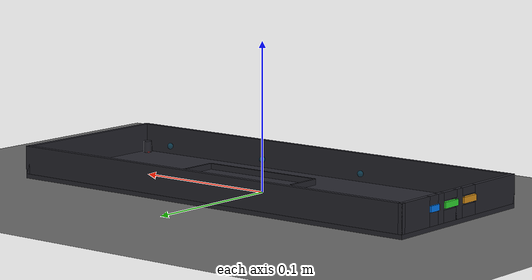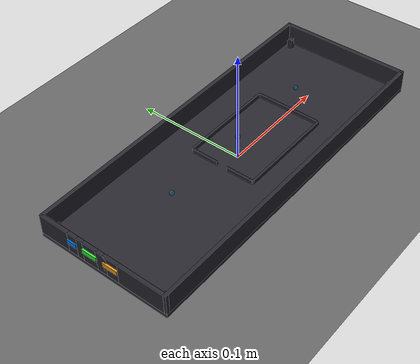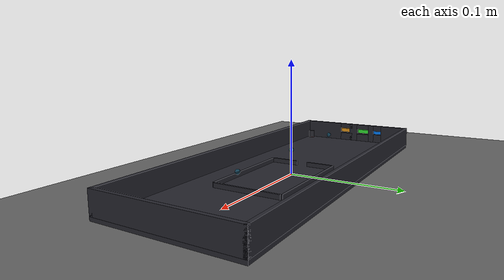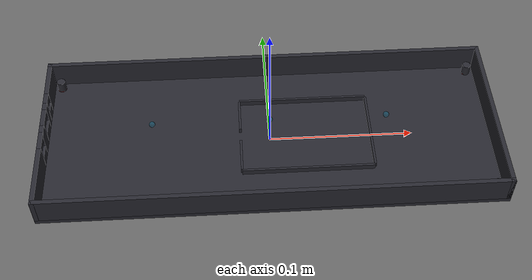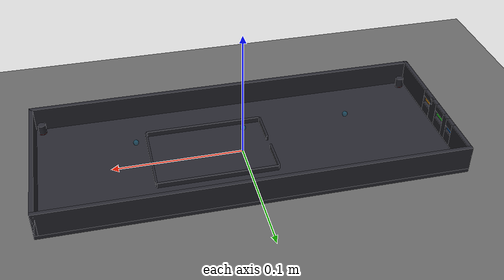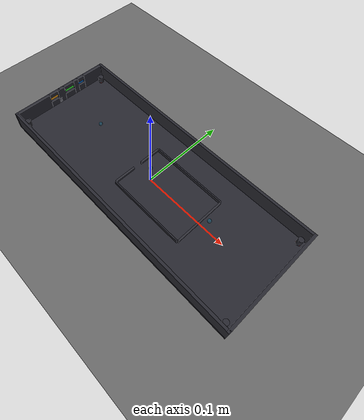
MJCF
<mujoco model="keyboard_bottom_case">

  <compiler angle="radian" autolimits="true"/>

  <option gravity="0 0 -9.81" timestep="0.002"/>

  <default>
    <geom rgba="0.15 0.15 0.18 1"/>
  </default>

  <asset>
    <material name="abs_black"
              rgba="0.15 0.15 0.18 1"
              specular="0.3"
              shininess="0.4"
              reflectance="0.05"/>
  </asset>

  <worldbody>

    <geom name="ground" type="plane" size="1 1 0.1"
          pos="0 0 0" euler="0 0 0"
          friction="0.8 0.005 0.0001"
          rgba="0.4 0.4 0.4 1"/>

    <body name="bottom_case" pos="0 0 0.011">

      <inertial pos="0 0 0"
                mass="0.085"
                diaginertia="3.2e-5 2.4e-4 2.5e-4"/>

      <!-- freejoint: comment out to make case a static fixture anchor -->
      <freejoint name="bottom_case_free"/>

      <geom name="floor_slab"
            type="box"
            size="0.1564 0.06115 0.0015"
            pos="0 0 -0.0095"
            material="abs_black"
            density="1050"
            friction="1.0 0.005 0.0001"
            condim="4"
            priority="1"/>

      <!-- Segment A: rear section, before USB-C (+Y side) -->
      <!-- Y: +0.06115 down to USB-C rear edge +0.0325 → half=(0.06115-0.0325)/2=0.01433, center=0.06115-0.01433=0.04682 -->
      <geom name="wall_left_A"
            type="box"
            size="0.0015 0.01433 0.0095"
            pos="-0.1549 0.04682 0.0015"
            material="abs_black"
            density="1050"
            friction="1.0 0.005 0.0001"
            condim="4" priority="1"/>

      <!-- USB-C fill BELOW cutout -->
      <geom name="wall_left_usbc_below"
            type="box"
            size="0.0015 0.0045 0.0045"
            pos="-0.1549 0.028 -0.0035"
            material="abs_black"
            density="1050"
            friction="1.0 0.005 0.0001"
            condim="4" priority="1"/>

      <!-- USB-C fill ABOVE cutout -->
      <geom name="wall_left_usbc_above"
            type="box"
            size="0.0015 0.0045 0.003"
            pos="-0.1549 0.028 0.008"
            material="abs_black"
            density="1050"
            friction="1.0 0.005 0.0001"
            condim="4" priority="1"/>

      <!-- Segment B: between USB-C and power switch -->
      <!-- Y: USB-C front edge 0.0235 to power rear edge 0.0175 → half=0.003, center=0.020 -->
      <geom name="wall_left_B"
            type="box"
            size="0.0015 0.003 0.0095"
            pos="-0.1549 0.0205 0.0015"
            material="abs_black"
            density="1050"
            friction="1.0 0.005 0.0001"
            condim="4" priority="1"/>

      <!-- Power switch fill BELOW -->
      <geom name="wall_left_pwr_below"
            type="box"
            size="0.0015 0.007 0.004"
            pos="-0.1549 0.0105 -0.004"
            material="abs_black"
            density="1050"
            friction="1.0 0.005 0.0001"
            condim="4" priority="1"/>

      <!-- Power switch fill ABOVE -->
      <geom name="wall_left_pwr_above"
            type="box"
            size="0.0015 0.007 0.0025"
            pos="-0.1549 0.0105 0.0085"
            material="abs_black"
            density="1050"
            friction="1.0 0.005 0.0001"
            condim="4" priority="1"/>

      <!-- Segment C: between power switch and OS switch -->
      <geom name="wall_left_C"
            type="box"
            size="0.0015 0.005 0.0095"
            pos="-0.1549 -0.0005 0.0015"
            material="abs_black"
            density="1050"
            friction="1.0 0.005 0.0001"
            condim="4" priority="1"/>

      <!-- OS switch fill BELOW -->
      <geom name="wall_left_os_below"
            type="box"
            size="0.0015 0.007 0.004"
            pos="-0.1549 -0.0095 -0.004"
            material="abs_black"
            density="1050"
            friction="1.0 0.005 0.0001"
            condim="4" priority="1"/>

      <!-- OS switch fill ABOVE -->
      <geom name="wall_left_os_above"
            type="box"
            size="0.0015 0.007 0.0025"
            pos="-0.1549 -0.0095 0.0085"
            material="abs_black"
            density="1050"
            friction="1.0 0.005 0.0001"
            condim="4" priority="1"/>

      <!-- Segment D: front section, after OS switch (−Y side) -->
      <!-- Y: OS front edge -0.0165 down to -0.06115 → half=(0.06115-0.0165)/2=0.02233, center=-(0.0165+0.02233)=-0.03883 -->
      <geom name="wall_left_D"
            type="box"
            size="0.0015 0.02233 0.0095"
            pos="-0.1549 -0.03883 0.0015"
            material="abs_black"
            density="1050"
            friction="1.0 0.005 0.0001"
            condim="4" priority="1"/>

      <!-- ── CUTOUT INDICATOR SITES ─────────────────────────────────── -->
      <site name="usbc_cutout"
            type="box"
            size="0.001 0.0045 0.002"
            pos="-0.1565 0.028 0.003"
            rgba="0 0.5 1 0.9"/>

      <site name="power_cutout"
            type="box"
            size="0.001 0.007 0.002"
            pos="-0.1565 0.0105 0.003"
            rgba="0.2 0.9 0.2 0.9"/>

      <site name="os_cutout"
            type="box"
            size="0.001 0.007 0.002"
            pos="-0.1565 -0.0095 0.003"
            rgba="0.9 0.6 0.1 0.9"/>

      <!-- ── WALL: Right (+X side) — clean, no cutouts ─────────────── -->
      <geom name="wall_right"
            type="box"
            size="0.0015 0.06115 0.0095"
            pos="0.1549 0 0.0015"
            material="abs_black"
            density="1050"
            friction="1.0 0.005 0.0001"
            condim="4" priority="1"/>

      <!-- ── WALL: Rear (+Y side) ───────────────────────────────────── -->
      <geom name="wall_rear"
            type="box"
            size="0.1564 0.0015 0.0095"
            pos="0 0.05965 0.0015"
            material="abs_black"
            density="1050"
            friction="1.0 0.005 0.0001"
            condim="4" priority="1"/>

      <!-- ── WALL: Front (−Y side) ──────────────────────────────────── -->
      <geom name="wall_front"
            type="box"
            size="0.1564 0.0015 0.0095"
            pos="0 -0.05965 0.0015"
            material="abs_black"
            density="1050"
            friction="1.0 0.005 0.0001"
            condim="4" priority="1"/>

      <!-- Battery rib: Left side (−Y) -->
      <geom name="battery_rib_left"
            type="box"
            size="0.045 0.00075 0.002"
            pos="0.025 -0.03075 -0.006"
            material="abs_black"
            density="1050"
            friction="1.0 0.005 0.0001"
            condim="4" priority="1"/>

      <!-- Battery rib: Right side (+Y) -->
      <geom name="battery_rib_right"
            type="box"
            size="0.045 0.00075 0.002"
            pos="0.025 0.03075 -0.006"
            material="abs_black"
            density="1050"
            friction="1.0 0.005 0.0001"
            condim="4" priority="1"/>

      <!-- Battery rib: Front (−X), split for JST connector clearance -->
      <geom name="battery_rib_front_left"
            type="box"
            size="0.00075 0.0125 0.002"
            pos="-0.02025 -0.0175 -0.006"
            material="abs_black"
            density="1050"
            friction="1.0 0.005 0.0001"
            condim="4" priority="1"/>

      <geom name="battery_rib_front_right"
            type="box"
            size="0.00075 0.0125 0.002"
            pos="-0.02025 0.0175 -0.006"
            material="abs_black"
            density="1050"
            friction="1.0 0.005 0.0001"
            condim="4" priority="1"/>

      <!-- Battery rib: Rear (+X) -->
      <geom name="battery_rib_rear"
            type="box"
            size="0.00075 0.030 0.002"
            pos="0.07025 0 -0.006"
            material="abs_black"
            density="1050"
            friction="1.0 0.005 0.0001"
            condim="4" priority="1"/>

      <!-- Screw boss: Front-Left (−X, −Y corner) -->
      <geom name="screw_boss_geom_FL"
            type="cylinder"
            size="0.003 0.004"
            pos="-0.1484 -0.05315 -0.004"
            material="abs_black"
            density="1050"
            friction="1.0 0.005 0.0001"
            condim="4" priority="1"/>

      <!-- Screw boss: Front-Right (+X, −Y corner) -->
      <geom name="screw_boss_geom_FR"
            type="cylinder"
            size="0.003 0.004"
            pos="0.1484 -0.05315 -0.004"
            material="abs_black"
            density="1050"
            friction="1.0 0.005 0.0001"
            condim="4" priority="1"/>

      <!-- Screw boss: Rear-Left (−X, +Y corner) -->
      <geom name="screw_boss_geom_RL"
            type="cylinder"
            size="0.003 0.004"
            pos="-0.1484 0.05315 -0.004"
            material="abs_black"
            density="1050"
            friction="1.0 0.005 0.0001"
            condim="4" priority="1"/>

      <!-- Screw boss: Rear-Right (+X, +Y corner) -->
      <geom name="screw_boss_geom_RR"
            type="cylinder"
            size="0.003 0.004"
            pos="0.1484 0.05315 -0.004"
            material="abs_black"
            density="1050"
            friction="1.0 0.005 0.0001"
            condim="4" priority="1"/>

      <!-- Center of case floor (fixture dowel registration) -->
      <site name="fixture_dowel_center"
            type="cylinder"
            size="0.002 0.001"
            pos="0 0 -0.0095"
            rgba="1 0.8 0 1"/>

      <!-- Corner screw boss sites -->
      <site name="screw_boss_FL"
            type="cylinder" size="0.003 0.001"
            pos="-0.1484 -0.05315 -0.0085"
            rgba="0.8 0.2 0.2 1"/>
      <site name="screw_boss_FR"
            type="cylinder" size="0.003 0.001"
            pos="0.1484 -0.05315 -0.0085"
            rgba="0.8 0.2 0.2 1"/>
      <site name="screw_boss_RL"
            type="cylinder" size="0.003 0.001"
            pos="-0.1484 0.05315 -0.0085"
            rgba="0.8 0.2 0.2 1"/>
      <site name="screw_boss_RR"
            type="cylinder" size="0.003 0.001"
            pos="0.1484 0.05315 -0.0085"
            rgba="0.8 0.2 0.2 1"/>

      <!-- PCB placement origin -->
      <site name="pcb_origin"
            type="box" size="0.001 0.001 0.0002"
            pos="0 0 -0.006"
            rgba="0.2 0.8 0.2 0.0"/>

      <!-- Interior floor surface reference (plate/foam rest here) -->
      <site name="floor_surface"
            type="box" size="0.1534 0.05815 0.0002"
            pos="0 0 -0.008"
            rgba="0.9 0.5 0.1 0.0"/>

      <!-- Rim top face reference (where case mates with top case) -->
      <site name="rim_top"
            type="box" size="0.1564 0.06115 0.0002"
            pos="0 0 0.011"
            rgba="0.9 0.5 0.1 0.0"/>

      <!-- Robot end-effector grasp targets -->
      <site name="grasp_top_center"
            type="sphere" size="0.002"
            pos="0 0 0.011"
            rgba="0 0.6 0.8 0.4"/>

      <site name="vacuum_grasp_left"
            type="sphere" size="0.002"
            pos="-0.08 0 0.011"
            rgba="0 0.6 0.8 0.3"/>

      <site name="vacuum_grasp_right"
            type="sphere" size="0.002"
            pos="0.08 0 0.011"
            rgba="0 0.6 0.8 0.3"/>

    </body>

  </worldbody>

</mujoco>
